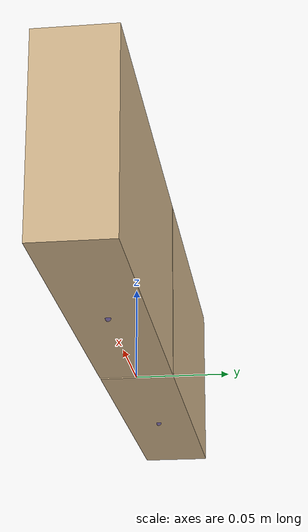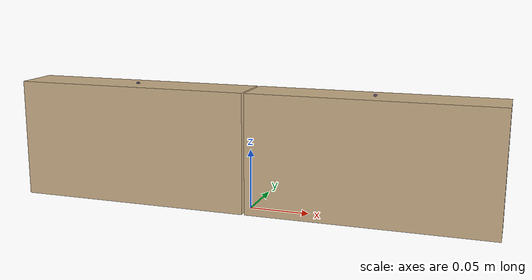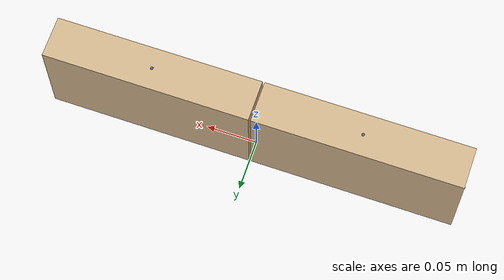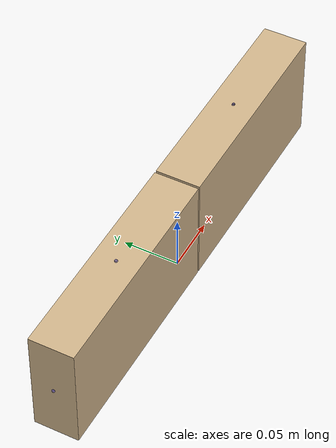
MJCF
<mujoco model="blocks">
    <asset>
        <texture file="../textures/light-wood.png" name="tex-light-wood" type="2d" />
        <material name="light-wood" reflectance="0.5" texrepeat="20 20" texture="tex-light-wood" texuniform="true" />
    </asset>
    <equality>
        <weld active="false" body1="1_block_l" body2="2_block_r" solimp="1 1 0.5" solref="0.01 0.3" />
    </equality>
    <worldbody>
        <body name="1_block_l" pos="-0.101 0.0 0.05" quat="1 0 0 0">
            <geom material="light-wood" type="box" size="0.1 0.02 0.05" name="box_l_geom" pos="0 0 0" rgba="0.82 0.71 0.55 1" density="100" solref="0.001 1"/>
            <site name="left-right,0,180,conn_site1" pos="0.101 0. 0." quat="0.707 0 -0.707 0" rgba="1 0 0 0.3" size="0.01" />
            <site name="1_block_l_bottom_site" pos="0.0 0.0 -0.05" rgba="0 0 1 0.3" size="0.0015" />
            <site name="1_block_l_top_site" pos="0.0 0.0 0.05" rgba="0 0 1 0.3" size="0.0015" />
            <site name="grasp_1_block_l_bottom_site" pos="0.0 0.0 -0.05" rgba="0 0 1 0.3" size="0.0015" />
            <site name="grasp_1_block_l_top_site" pos="0.0 0.0 0.05" quat="0.707 0 0.707 0" rgba="0 0 1 0.3" size="0.0015" />
	        <!--site name="grasp_1_block_l_right_site" pos="0.10 0. 0."  rgba="0 0 1 0.3" size="0.0015" /-->
	        <site name="grasp_1_block_l_left_site" pos="-0.10 0. 0." quat="1 0 0 0" rgba="0 0 1 0.3" size="0.0015" />
            <site name="1_block_l_horizontal_radius_site" pos="0. 0. 0." rgba="0 0 1 0." size="0.1" />
        </body>
        <body name="2_block_r" pos="0.101 0.0 0.05" quat="1 0 0 0">
            <geom material="light-wood" type="box" size="0.1 0.02 0.05" name="box_r_geom" pos="0 0 0" rgba="0.82 0.71 0.55 1" density="100" solref="0.001 1"/>
            <site name="right-left,0,180,conn_site1" pos="-0.101 0. 0." quat="0.707 0 -0.707 0" rgba="0 0 1 0.3" size="0.01" />
            <site name="2_block_r_bottom_site" pos="0.0 0.0 -0.05" rgba="0 0 1 0.3" size="0.0015" />
            <site name="2_block_r_top_site" pos="0.0 0.0 0.05"  rgba="0 0 1 0.3" size="0.0015" />
	        <!--site name="grasp_2_block_l_right_site" pos="-0.10 0. 0."  quat="0 0 0 1" rgba="0 0 1 0.3" size="0.0015" /-->
            <site name="grasp_2_block_r_top_site" pos="0.0 0.0 0.05" quat="0.707 0 0.707 0" rgba="0 0 1 0.3" size="0.0015" />
            <site name="2_block_r_horizontal_radius_site" pos="0. 0. 0." rgba="0 0 1 0." size="0.1" />
        </body>
    </worldbody>
</mujoco>
